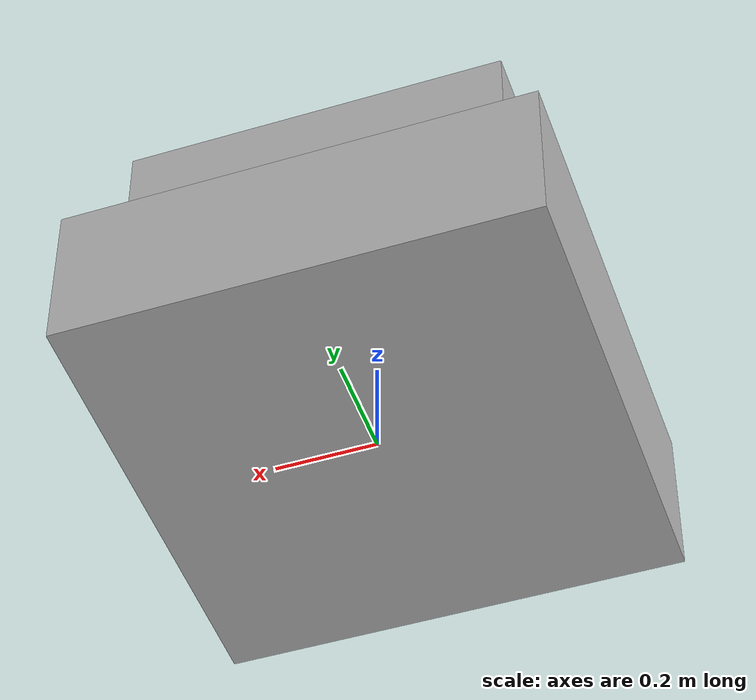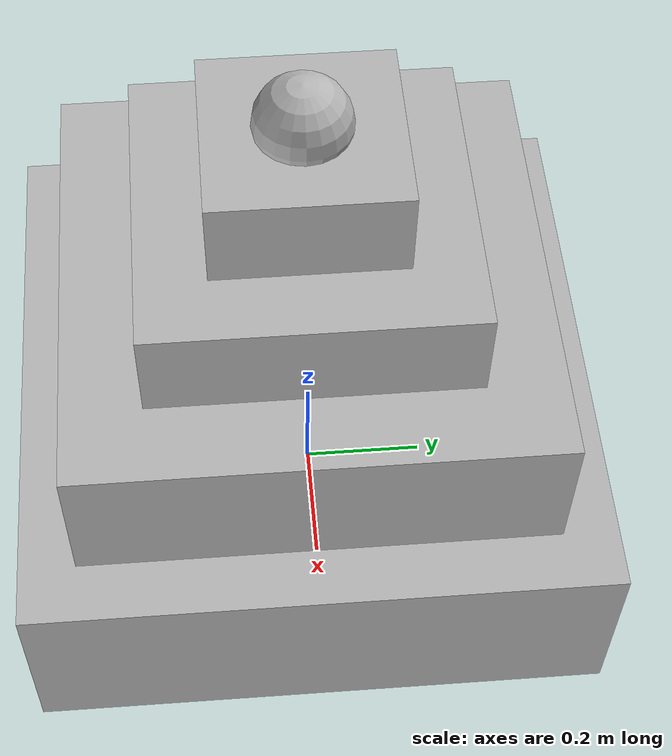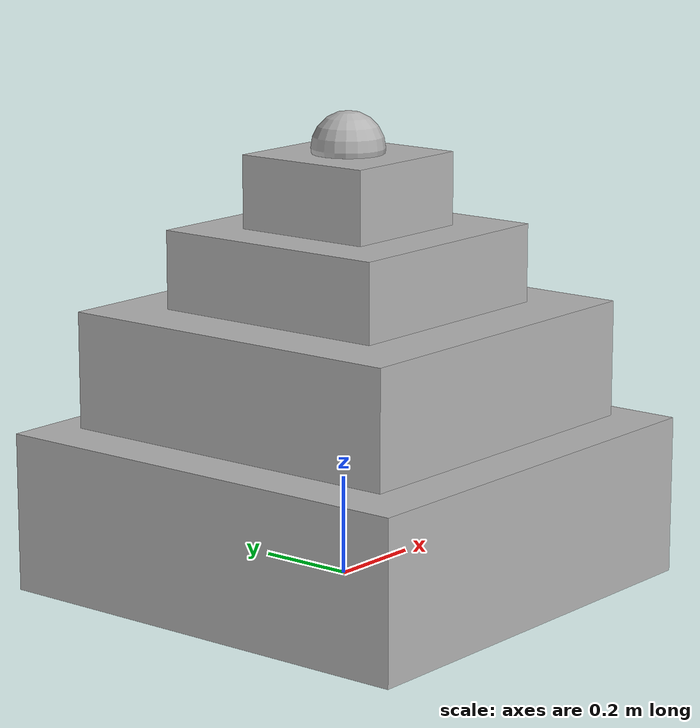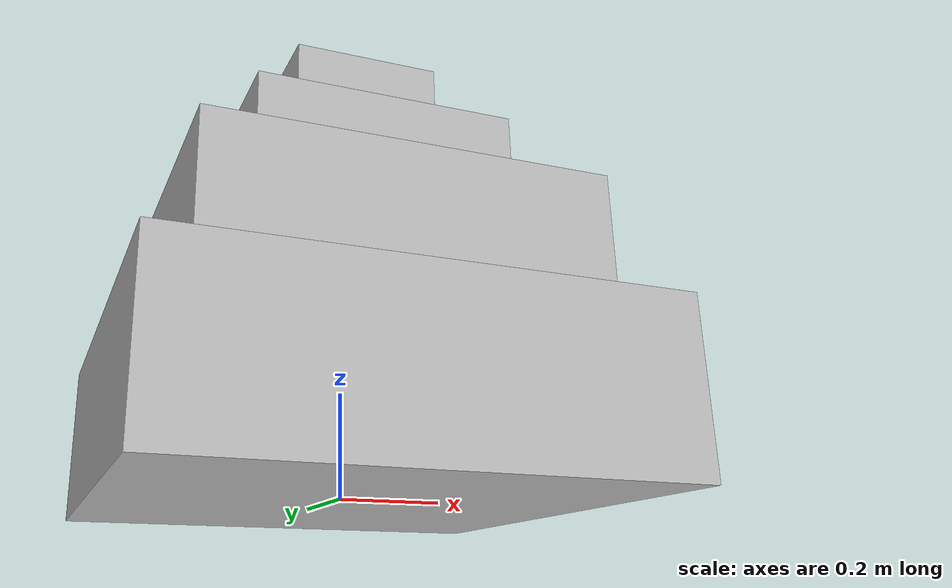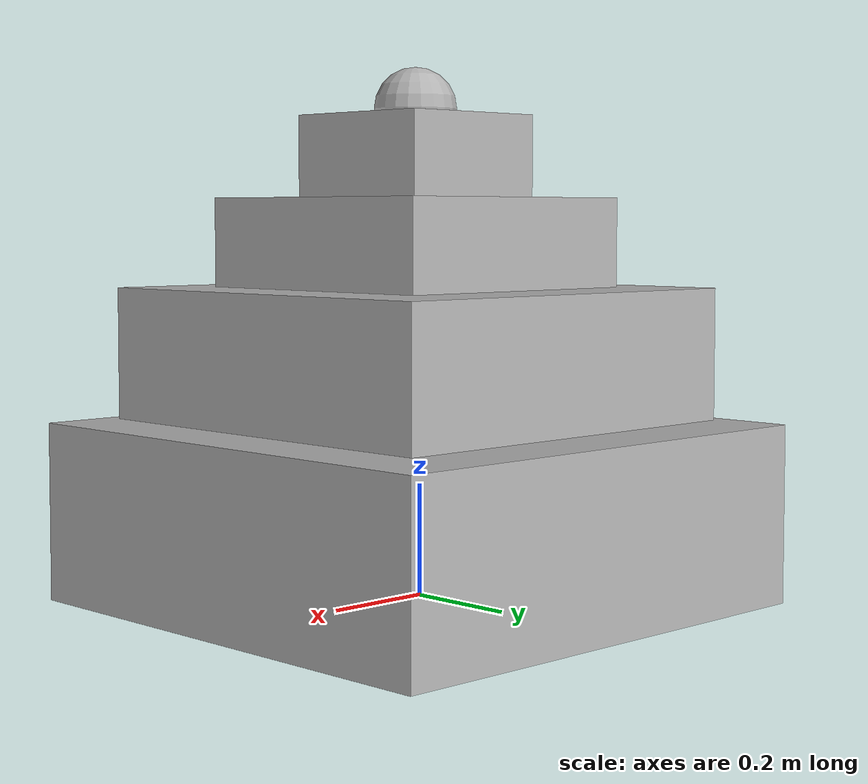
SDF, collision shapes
<?xml version="1.0" ?>
<sdf version="1.6">
  <model name="aws_robomaker_residential_Chandelier_01">
    <link name="link">
      <inertial>
        <mass>1</mass>
      </inertial>
      <collision name="aws_chandelier_01_collision_collider_box">
        <pose>0.001882 -0.009374 0.146931 0.0 -0.0 0.0</pose>
        <geometry>
          <box>
            <size>0.923758 0.933699 0.321067</size>
          </box>
        </geometry>
      </collision>
      <collision name="aws_chandelier_01_collision_collider_box.001">
        <pose>0.001882 -0.009374 0.43284 0.0 -0.0 0.0</pose>
        <geometry>
          <box>
            <size>0.745411 0.753432 0.234658</size>
          </box>
        </geometry>
      </collision>
      <collision name="aws_chandelier_01_collision_collider_box.002">
        <pose>0.001882 -0.009374 0.630407 0.0 -0.0 0.0</pose>
        <geometry>
          <box>
            <size>0.500121 0.505503 0.15744</size>
          </box>
        </geometry>
      </collision>
      <collision name="aws_chandelier_01_collision_collider_box.003">
        <pose>0.001882 -0.009374 0.781596 0.0 -0.0 0.0</pose>
        <geometry>
          <box>
            <size>0.289806 0.292924 0.147012</size>
          </box>
        </geometry>
      </collision>
      <collision name="aws_chandelier_01_collision_collider_sphere">
        <pose>0.001882 -0.009373 0.864851 0.0 -0.0 0.0</pose>
        <geometry>
          <sphere>
            <radius>0.073626</radius>
          </sphere>
        </geometry>
      </collision>
      <visual name="visual">
        <geometry>
          <mesh>
            <uri>model://aws_robomaker_residential_Chandelier_01/meshes/aws_Chandelier_01_visual.DAE</uri>
          </mesh>
        </geometry>
        <meta> <layer> 2 </layer></meta>
      </visual>
    </link>
	<static>1</static>
  </model>
</sdf>
